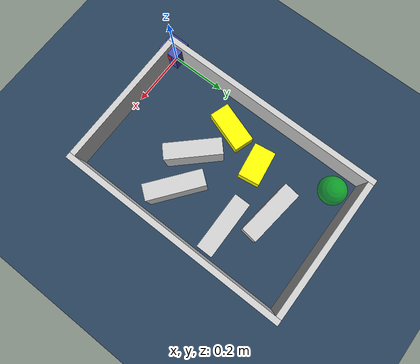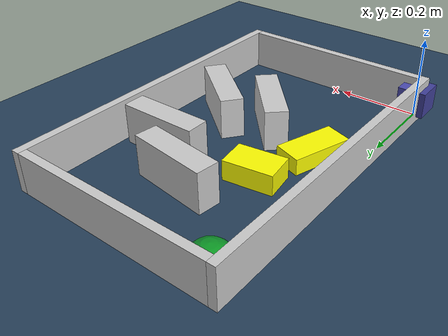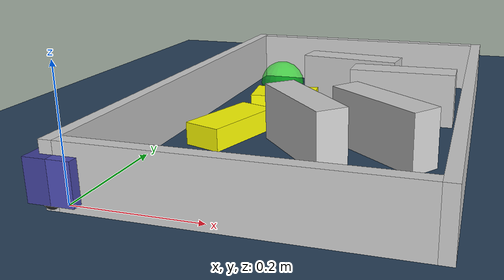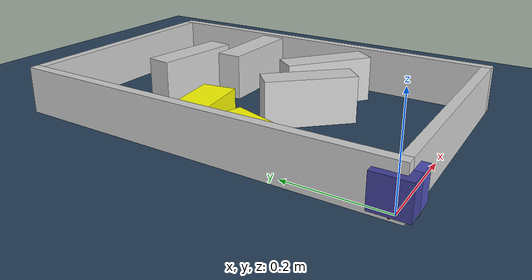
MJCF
<?xml version="1.0" ?>
<mujoco model="generated_environment">
  <option cone="elliptic" integrator="implicitfast" iterations="100" timestep="0.002"/>
  <default>
    <geom density="1"/>
  </default>
  <asset>
    <texture builtin="gradient" height="3072" rgb1="0.3 0.5 0.7" rgb2="0 0 0" type="skybox" width="512"/>
    <texture builtin="checker" height="300" mark="edge" markrgb="0.8 0.8 0.8" name="groundplane" rgb1="0.2 0.3 0.4" rgb2="0.1 0.2 0.3" type="2d" width="300"/>
    <material name="groundplane" reflectance="0.2" texrepeat="5 5" texture="groundplane" texuniform="true"/>
    <material name="robot" rgba="1.0 1.0 0.0 1.0"/>
  </asset>
  <include file="/home/dhruv/projects_dhruv/namo/namo_cpp/test_xml/little-car-modeling-package/assets/mjcf/little_car.xml"/>
  <worldbody>
    <light dir="0 0 -1" directional="true" pos="0 0 1.5"/>
    <geom condim="4" friction="0.5 0.005 0.001" material="groundplane" name="floor" size="0 0 0.05" type="plane"/>
    <body name="walls">
      <geom name="wall_1" condim="4" pos="-0.01 0.3875 0.05" friction="1 0.005 0.0001" rgba="0.800000011920929 0.800000011920929 0.800000011920929 1.0" size="0.01 0.40750000000000003 0.05" type="box"/>
      <geom name="wall_2" condim="4" pos="0.5 0.3875 0.05" friction="1 0.005 0.0001" rgba="0.800000011920929 0.800000011920929 0.800000011920929 1.0" size="0.01 0.40750000000000003 0.05" type="box"/>
      <geom name="wall_3" condim="4" pos="0.245 -0.01 0.05" friction="1 0.005 0.0001" rgba="0.800000011920929 0.800000011920929 0.800000011920929 1.0" size="0.245 0.01 0.05" type="box"/>
      <geom name="wall_4" condim="4" pos="0.245 0.785 0.05" friction="1 0.005 0.0001" rgba="0.800000011920929 0.800000011920929 0.800000011920929 1.0" size="0.245 0.01 0.05" type="box"/>
    </body>
    <body name="obstacle_1_movable">
      <geom name="obstacle_1_movable" condim="4" pos="0.09778396346484634 0.32264248884631685 0.02" quat="-0.9872595202413191 0 0 0.1591183197902754" friction="1 0.005 0.0001" rgba="1 1 0 1" size="0.035 0.075 0.02" type="box" mass="0.1"/>
      <joint type="free"/>
    </body>
    <body name="obstacle_2_movable">
      <geom name="obstacle_2_movable" condim="4" pos="0.1512528920229908 0.4668123195549946 0.025" quat="0.6526933784046893 0 0 0.7576221708653154" friction="1 0.005 0.0001" rgba="1 1 0 1" size="0.0375 0.06 0.025" type="box" mass="0.1"/>
      <joint type="free"/>
    </body>
    <body name="wall_5">
      <geom name="wall_5" condim="4" pos="0.2583884682669995 0.5911751111180746 0.05" quat="0.7496821598668038 0 0 0.6617980501462997" friction="1 0.005 0.0001" rgba="0.800000011920929 0.800000011920929 0.800000011920929 1.0" size="0.0275 0.0975 0.05" type="box"/>
    </body>
    <body name="wall_6">
      <geom name="wall_6" condim="4" pos="0.37162181853503795 0.3044691411534257 0.05" quat="-0.4389894959050929 0 0 0.898492193892074" friction="1 0.005 0.0001" rgba="0.800000011920929 0.800000011920929 0.800000011920929 1.0" size="0.0275 0.0975 0.05" type="box"/>
    </body>
    <body name="wall_7">
      <geom name="wall_7" condim="4" pos="0.37663306068442987 0.5007384742597942 0.05" quat="0.704624398138273 0 0 0.709580479965646" friction="1 0.005 0.0001" rgba="0.800000011920929 0.800000011920929 0.800000011920929 1.0" size="0.0275 0.0975 0.05" type="box"/>
    </body>
    <body name="wall_8">
      <geom name="wall_8" condim="4" pos="0.24625225641904896 0.27877520580174286 0.05" quat="0.39584398867269427 0 0 0.918317775408759" friction="1 0.005 0.0001" rgba="0.800000011920929 0.800000011920929 0.800000011920929 1.0" size="0.095 0.0275 0.05" type="box"/>
    </body>
    <site name="goal" type="sphere" size="0.05 0.05 0.05" rgba="0 1 0 0.5" pos="0.060502 0.718623 0.0"/>
  </worldbody>
</mujoco>

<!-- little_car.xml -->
<mujoco model="little_car">
  <compiler angle="radian" autolimits="true"/>
  <default>
    <geom condim="4"/>
    <joint damping="0.01" armature="0.0001"/>
  </default>
  <worldbody>
    <body name="car" pos="0 0 0.010000">
      <freejoint name="car_freejoint"/>
      <inertial pos="0.000000 0 0.037500" mass="0.350000"
                diaginertia="0.000266 0.000266 0.000286"/>
      <geom name="front_chassis_collision" type="box" pos="0.017500 0 0.037500"
            size="0.017500 0.035000 0.032500"
            rgba="0.3 0.3 0.7 1"/>
      <geom name="rear_chassis_collision" type="box" pos="-0.017500 0 0.037500"
            size="0.017500 0.035000 0.032500"
            rgba="0.25 0.25 0.6 1"/>
      <geom name="front_marker" type="box" pos="0.034000 0 0.050500"
            size="0.002000 0.015000 0.010000"
            rgba="1.0 0.2 0.2 1" contype="0" conaffinity="0"/>

      <body name="rear_support_body" pos="-0.030000 0.000000 0.002500">
        <joint name="rear_caster_joint" type="ball" damping="0.0001"/>
        <inertial pos="0 0 0" mass="0.025000"
                  diaginertia="0.000001 0.000001 0.000001"/>
        <geom name="rear_support" type="sphere"
              pos="0 0 0"
              size="0.002500"
              friction="0.000000 0.000000 0.000000"
              rgba="0.7 0.1 0.1 1"/>
      </body>

      <body name="front_support_body" pos="0.030000 0.000000 0.002500">
        <joint name="front_caster_joint" type="ball" damping="0.0001"/>
        <inertial pos="0 0 0" mass="0.025000"
                  diaginertia="0.000001 0.000001 0.000001"/>
        <geom name="front_support" type="sphere"
              pos="0 0 0"
              size="0.002500"
              friction="0.000000 0.000000 0.000000"
              rgba="0.1 0.7 0.1 1"/>
      </body>

      <body name="left_wheel" pos="0.000000 0.034000 0.015000">
        <inertial pos="0 0 0" mass="0.050000"
                  diaginertia="0.000003 0.000006 0.000003"/>
        <joint name="left_wheel_joint" type="hinge" axis="0 1 0"/>
        <geom name="left_wheel_collision" type="cylinder" size="0.015000 0.000500"
              euler="1.57079632679 0 0" rgba="0.1 0.1 0.1 1"/>
      </body>

      <body name="right_wheel" pos="0.000000 -0.034000 0.015000">
        <inertial pos="0 0 0" mass="0.050000"
                  diaginertia="0.000003 0.000006 0.000003"/>
        <joint name="right_wheel_joint" type="hinge" axis="0 1 0"/>
        <geom name="right_wheel_collision" type="cylinder" size="0.015000 0.000500"
              euler="1.57079632679 0 0" rgba="0.1 0.1 0.1 1"/>
      </body>
    </body>
  </worldbody>
  <contact>
    <exclude body1="car" body2="left_wheel"/>
    <exclude body1="car" body2="right_wheel"/>
  </contact>
  <actuator>
    <velocity name="left_wheel_drive" joint="left_wheel_joint"
              ctrlrange="-25.000000 25.000000"
              kv="0.750000" forcerange="-0.500000 0.500000"/>
    <velocity name="right_wheel_drive" joint="right_wheel_joint"
              ctrlrange="-25.000000 25.000000"
              kv="0.750000" forcerange="-0.500000 0.500000"/>
  </actuator>
</mujoco>
